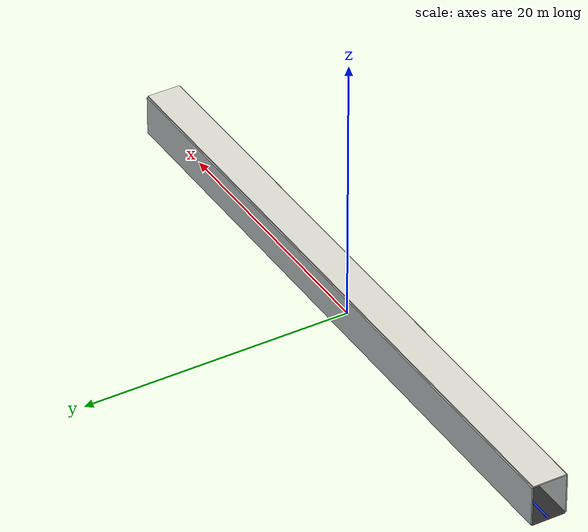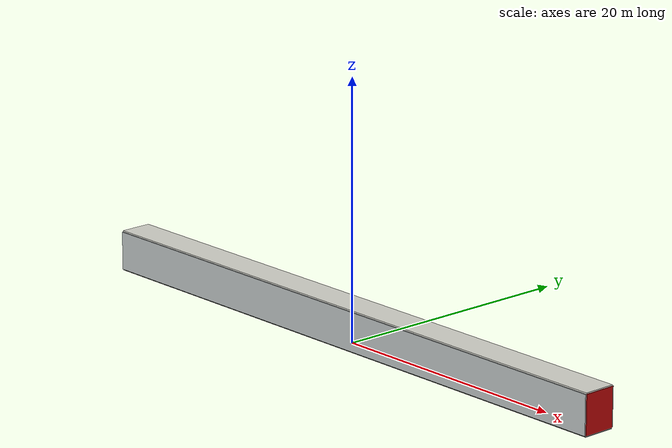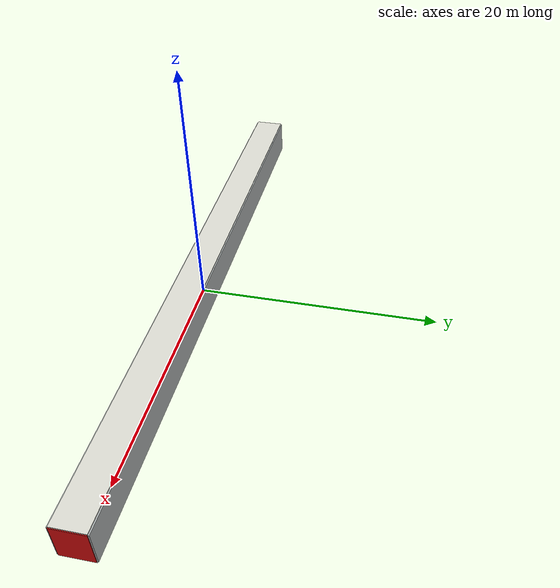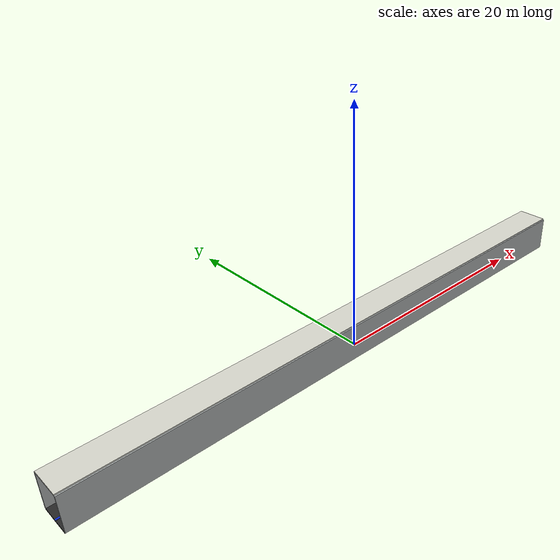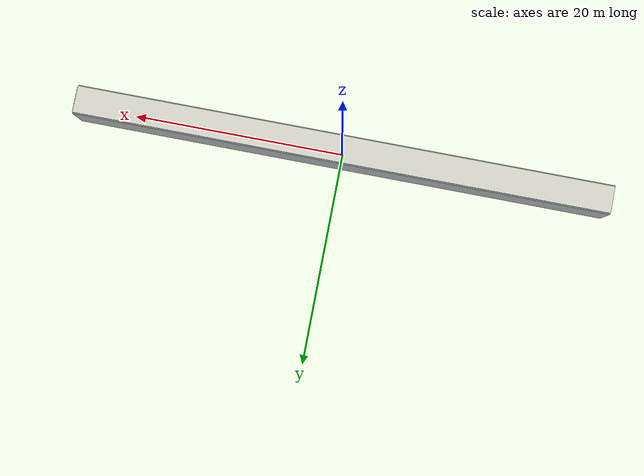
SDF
<?xml version="1.0" ?>
<sdf version="1.7">
  <world name="confined_space">
    <physics name="default_physics" type="ode">
      <max_step_size>0.001</max_step_size>
      <real_time_factor>1.0</real_time_factor>
    </physics>

    <scene>
      <ambient>0.45 0.45 0.45 1</ambient>
      <background>0.70 0.82 0.95 1</background>
      <shadows>false</shadows>
    </scene>

    <light name="sun" type="directional">
      <pose>0 0 30 0 0 0</pose>
      <diffuse>0.9 0.9 0.85 1</diffuse>
      <specular>0.2 0.2 0.2 1</specular>
      <direction>-0.4 0.2 -0.9</direction>
    </light>

    <model name="dark_floor">
      <static>true</static>
      <pose>0 0 -0.05 0 0 0.0</pose>
      <link name="link">
        <collision name="collision">
          <geometry>
            <box>
              <size>50 2.5 0.1</size>
            </box>
          </geometry>
        </collision>
        <visual name="visual">
          <geometry>
            <box>
              <size>50 2.5 0.1</size>
            </box>
          </geometry>
          <material>
            <ambient>0.16 0.16 0.16 1</ambient>
            <diffuse>0.16 0.16 0.16 1</diffuse>
            <specular>0.1 0.1 0.1 1</specular>
          </material>
        </visual>
      </link>
    </model>

    <model name="off_white_ceiling">
      <static>true</static>
      <pose>0 0 3.05 0 0 0.0</pose>
      <link name="link">
        <collision name="collision">
          <geometry>
            <box>
              <size>50 2.5 0.1</size>
            </box>
          </geometry>
        </collision>
        <visual name="visual">
          <geometry>
            <box>
              <size>50 2.5 0.1</size>
            </box>
          </geometry>
          <material>
            <ambient>0.86 0.86 0.82 1</ambient>
            <diffuse>0.86 0.86 0.82 1</diffuse>
            <specular>0.1 0.1 0.1 1</specular>
          </material>
        </visual>
      </link>
    </model>

    <model name="left_concrete_wall">
      <static>true</static>
      <pose>0 1.3 1.5 0 0 0.0</pose>
      <link name="link">
        <collision name="collision">
          <geometry>
            <box>
              <size>50 0.1 3.0</size>
            </box>
          </geometry>
        </collision>
        <visual name="visual">
          <geometry>
            <box>
              <size>50 0.1 3.0</size>
            </box>
          </geometry>
          <material>
            <ambient>0.70 0.72 0.72 1</ambient>
            <diffuse>0.70 0.72 0.72 1</diffuse>
            <specular>0.1 0.1 0.1 1</specular>
          </material>
        </visual>
      </link>
    </model>

    <model name="right_concrete_wall">
      <static>true</static>
      <pose>0 -1.3 1.5 0 0 0.0</pose>
      <link name="link">
        <collision name="collision">
          <geometry>
            <box>
              <size>50 0.1 3.0</size>
            </box>
          </geometry>
        </collision>
        <visual name="visual">
          <geometry>
            <box>
              <size>50 0.1 3.0</size>
            </box>
          </geometry>
          <material>
            <ambient>0.70 0.72 0.72 1</ambient>
            <diffuse>0.70 0.72 0.72 1</diffuse>
            <specular>0.1 0.1 0.1 1</specular>
          </material>
        </visual>
      </link>
    </model>

    <model name="red_warning_end_wall">
      <static>true</static>
      <pose>25.0 0 1.5 0 0 0.0</pose>
      <link name="link">
        <collision name="collision">
          <geometry>
            <box>
              <size>0.1 2.5 3.0</size>
            </box>
          </geometry>
        </collision>
        <visual name="visual">
          <geometry>
            <box>
              <size>0.1 2.5 3.0</size>
            </box>
          </geometry>
          <material>
            <ambient>0.85 0.05 0.05 1</ambient>
            <diffuse>0.85 0.05 0.05 1</diffuse>
            <specular>0.1 0.1 0.1 1</specular>
          </material>
        </visual>
      </link>
    </model>

    <model name="blue_navigation_guide_strip">
      <static>true</static>
      <pose>0 0 0.015 0 0 0.0</pose>
      <link name="link">
        <collision name="collision">
          <geometry>
            <box>
              <size>50 0.15 0.025</size>
            </box>
          </geometry>
        </collision>
        <visual name="visual">
          <geometry>
            <box>
              <size>50 0.15 0.025</size>
            </box>
          </geometry>
          <material>
            <ambient>0.05 0.18 0.85 1</ambient>
            <diffuse>0.05 0.18 0.85 1</diffuse>
            <specular>0.1 0.1 0.1 1</specular>
          </material>
        </visual>
      </link>
    </model>

    <model name="orange_occlusion_block_00">
      <static>true</static>
      <pose>-18 0.62 0.75 0 0 0.0</pose>
      <link name="link">
        <collision name="collision">
          <geometry>
            <box>
              <size>0.7 0.45 1.5</size>
            </box>
          </geometry>
        </collision>
        <visual name="visual">
          <geometry>
            <box>
              <size>0.7 0.45 1.5</size>
            </box>
          </geometry>
          <material>
            <ambient>0.95 0.38 0.05 1</ambient>
            <diffuse>0.95 0.38 0.05 1</diffuse>
            <specular>0.1 0.1 0.1 1</specular>
          </material>
        </visual>
      </link>
    </model>

    <model name="orange_occlusion_block_01">
      <static>true</static>
      <pose>-10 -0.62 0.75 0 0 0.0</pose>
      <link name="link">
        <collision name="collision">
          <geometry>
            <box>
              <size>0.7 0.45 1.5</size>
            </box>
          </geometry>
        </collision>
        <visual name="visual">
          <geometry>
            <box>
              <size>0.7 0.45 1.5</size>
            </box>
          </geometry>
          <material>
            <ambient>0.95 0.38 0.05 1</ambient>
            <diffuse>0.95 0.38 0.05 1</diffuse>
            <specular>0.1 0.1 0.1 1</specular>
          </material>
        </visual>
      </link>
    </model>

    <model name="orange_occlusion_block_02">
      <static>true</static>
      <pose>-2 0.62 0.75 0 0 0.0</pose>
      <link name="link">
        <collision name="collision">
          <geometry>
            <box>
              <size>0.7 0.45 1.5</size>
            </box>
          </geometry>
        </collision>
        <visual name="visual">
          <geometry>
            <box>
              <size>0.7 0.45 1.5</size>
            </box>
          </geometry>
          <material>
            <ambient>0.95 0.38 0.05 1</ambient>
            <diffuse>0.95 0.38 0.05 1</diffuse>
            <specular>0.1 0.1 0.1 1</specular>
          </material>
        </visual>
      </link>
    </model>

    <model name="orange_occlusion_block_03">
      <static>true</static>
      <pose>8 -0.62 0.75 0 0 0.0</pose>
      <link name="link">
        <collision name="collision">
          <geometry>
            <box>
              <size>0.7 0.45 1.5</size>
            </box>
          </geometry>
        </collision>
        <visual name="visual">
          <geometry>
            <box>
              <size>0.7 0.45 1.5</size>
            </box>
          </geometry>
          <material>
            <ambient>0.95 0.38 0.05 1</ambient>
            <diffuse>0.95 0.38 0.05 1</diffuse>
            <specular>0.1 0.1 0.1 1</specular>
          </material>
        </visual>
      </link>
    </model>

    <model name="orange_occlusion_block_04">
      <static>true</static>
      <pose>16 0.62 0.75 0 0 0.0</pose>
      <link name="link">
        <collision name="collision">
          <geometry>
            <box>
              <size>0.7 0.45 1.5</size>
            </box>
          </geometry>
        </collision>
        <visual name="visual">
          <geometry>
            <box>
              <size>0.7 0.45 1.5</size>
            </box>
          </geometry>
          <material>
            <ambient>0.95 0.38 0.05 1</ambient>
            <diffuse>0.95 0.38 0.05 1</diffuse>
            <specular>0.1 0.1 0.1 1</specular>
          </material>
        </visual>
      </link>
    </model>

    <model name="left_yellow_wall_marker_00">
      <static>true</static>
      <pose>-22 1.245 1.4 0 0 0.0</pose>
      <link name="link">
        <collision name="collision">
          <geometry>
            <box>
              <size>1.2 0.035 0.4</size>
            </box>
          </geometry>
        </collision>
        <visual name="visual">
          <geometry>
            <box>
              <size>1.2 0.035 0.4</size>
            </box>
          </geometry>
          <material>
            <ambient>1.0 0.85 0.05 1</ambient>
            <diffuse>1.0 0.85 0.05 1</diffuse>
            <specular>0.1 0.1 0.1 1</specular>
          </material>
        </visual>
      </link>
    </model>

    <model name="right_yellow_wall_marker_00">
      <static>true</static>
      <pose>-22 -1.245 1.4 0 0 0.0</pose>
      <link name="link">
        <collision name="collision">
          <geometry>
            <box>
              <size>1.2 0.035 0.4</size>
            </box>
          </geometry>
        </collision>
        <visual name="visual">
          <geometry>
            <box>
              <size>1.2 0.035 0.4</size>
            </box>
          </geometry>
          <material>
            <ambient>1.0 0.85 0.05 1</ambient>
            <diffuse>1.0 0.85 0.05 1</diffuse>
            <specular>0.1 0.1 0.1 1</specular>
          </material>
        </visual>
      </link>
    </model>

    <model name="left_yellow_wall_marker_01">
      <static>true</static>
      <pose>-16 1.245 1.4 0 0 0.0</pose>
      <link name="link">
        <collision name="collision">
          <geometry>
            <box>
              <size>1.2 0.035 0.4</size>
            </box>
          </geometry>
        </collision>
        <visual name="visual">
          <geometry>
            <box>
              <size>1.2 0.035 0.4</size>
            </box>
          </geometry>
          <material>
            <ambient>1.0 0.85 0.05 1</ambient>
            <diffuse>1.0 0.85 0.05 1</diffuse>
            <specular>0.1 0.1 0.1 1</specular>
          </material>
        </visual>
      </link>
    </model>

    <model name="right_yellow_wall_marker_01">
      <static>true</static>
      <pose>-16 -1.245 1.4 0 0 0.0</pose>
      <link name="link">
        <collision name="collision">
          <geometry>
            <box>
              <size>1.2 0.035 0.4</size>
            </box>
          </geometry>
        </collision>
        <visual name="visual">
          <geometry>
            <box>
              <size>1.2 0.035 0.4</size>
            </box>
          </geometry>
          <material>
            <ambient>1.0 0.85 0.05 1</ambient>
            <diffuse>1.0 0.85 0.05 1</diffuse>
            <specular>0.1 0.1 0.1 1</specular>
          </material>
        </visual>
      </link>
    </model>

    <model name="left_yellow_wall_marker_02">
      <static>true</static>
      <pose>-10 1.245 1.4 0 0 0.0</pose>
      <link name="link">
        <collision name="collision">
          <geometry>
            <box>
              <size>1.2 0.035 0.4</size>
            </box>
          </geometry>
        </collision>
        <visual name="visual">
          <geometry>
            <box>
              <size>1.2 0.035 0.4</size>
            </box>
          </geometry>
          <material>
            <ambient>1.0 0.85 0.05 1</ambient>
            <diffuse>1.0 0.85 0.05 1</diffuse>
            <specular>0.1 0.1 0.1 1</specular>
          </material>
        </visual>
      </link>
    </model>

    <model name="right_yellow_wall_marker_02">
      <static>true</static>
      <pose>-10 -1.245 1.4 0 0 0.0</pose>
      <link name="link">
        <collision name="collision">
          <geometry>
            <box>
              <size>1.2 0.035 0.4</size>
            </box>
          </geometry>
        </collision>
        <visual name="visual">
          <geometry>
            <box>
              <size>1.2 0.035 0.4</size>
            </box>
          </geometry>
          <material>
            <ambient>1.0 0.85 0.05 1</ambient>
            <diffuse>1.0 0.85 0.05 1</diffuse>
            <specular>0.1 0.1 0.1 1</specular>
          </material>
        </visual>
      </link>
    </model>

    <model name="left_yellow_wall_marker_03">
      <static>true</static>
      <pose>-4 1.245 1.4 0 0 0.0</pose>
      <link name="link">
        <collision name="collision">
          <geometry>
            <box>
              <size>1.2 0.035 0.4</size>
            </box>
          </geometry>
        </collision>
        <visual name="visual">
          <geometry>
            <box>
              <size>1.2 0.035 0.4</size>
            </box>
          </geometry>
          <material>
            <ambient>1.0 0.85 0.05 1</ambient>
            <diffuse>1.0 0.85 0.05 1</diffuse>
            <specular>0.1 0.1 0.1 1</specular>
          </material>
        </visual>
      </link>
    </model>

    <model name="right_yellow_wall_marker_03">
      <static>true</static>
      <pose>-4 -1.245 1.4 0 0 0.0</pose>
      <link name="link">
        <collision name="collision">
          <geometry>
            <box>
              <size>1.2 0.035 0.4</size>
            </box>
          </geometry>
        </collision>
        <visual name="visual">
          <geometry>
            <box>
              <size>1.2 0.035 0.4</size>
            </box>
          </geometry>
          <material>
            <ambient>1.0 0.85 0.05 1</ambient>
            <diffuse>1.0 0.85 0.05 1</diffuse>
            <specular>0.1 0.1 0.1 1</specular>
          </material>
        </visual>
      </link>
    </model>

    <model name="left_yellow_wall_marker_04">
      <static>true</static>
      <pose>2 1.245 1.4 0 0 0.0</pose>
      <link name="link">
        <collision name="collision">
          <geometry>
            <box>
              <size>1.2 0.035 0.4</size>
            </box>
          </geometry>
        </collision>
        <visual name="visual">
          <geometry>
            <box>
              <size>1.2 0.035 0.4</size>
            </box>
          </geometry>
          <material>
            <ambient>1.0 0.85 0.05 1</ambient>
            <diffuse>1.0 0.85 0.05 1</diffuse>
            <specular>0.1 0.1 0.1 1</specular>
          </material>
        </visual>
      </link>
    </model>

    <model name="right_yellow_wall_marker_04">
      <static>true</static>
      <pose>2 -1.245 1.4 0 0 0.0</pose>
      <link name="link">
        <collision name="collision">
          <geometry>
            <box>
              <size>1.2 0.035 0.4</size>
            </box>
          </geometry>
        </collision>
        <visual name="visual">
          <geometry>
            <box>
              <size>1.2 0.035 0.4</size>
            </box>
          </geometry>
          <material>
            <ambient>1.0 0.85 0.05 1</ambient>
            <diffuse>1.0 0.85 0.05 1</diffuse>
            <specular>0.1 0.1 0.1 1</specular>
          </material>
        </visual>
      </link>
    </model>

    <model name="left_yellow_wall_marker_05">
      <static>true</static>
      <pose>8 1.245 1.4 0 0 0.0</pose>
      <link name="link">
        <collision name="collision">
          <geometry>
            <box>
              <size>1.2 0.035 0.4</size>
            </box>
          </geometry>
        </collision>
        <visual name="visual">
          <geometry>
            <box>
              <size>1.2 0.035 0.4</size>
            </box>
          </geometry>
          <material>
            <ambient>1.0 0.85 0.05 1</ambient>
            <diffuse>1.0 0.85 0.05 1</diffuse>
            <specular>0.1 0.1 0.1 1</specular>
          </material>
        </visual>
      </link>
    </model>

    <model name="right_yellow_wall_marker_05">
      <static>true</static>
      <pose>8 -1.245 1.4 0 0 0.0</pose>
      <link name="link">
        <collision name="collision">
          <geometry>
            <box>
              <size>1.2 0.035 0.4</size>
            </box>
          </geometry>
        </collision>
        <visual name="visual">
          <geometry>
            <box>
              <size>1.2 0.035 0.4</size>
            </box>
          </geometry>
          <material>
            <ambient>1.0 0.85 0.05 1</ambient>
            <diffuse>1.0 0.85 0.05 1</diffuse>
            <specular>0.1 0.1 0.1 1</specular>
          </material>
        </visual>
      </link>
    </model>

    <model name="left_yellow_wall_marker_06">
      <static>true</static>
      <pose>14 1.245 1.4 0 0 0.0</pose>
      <link name="link">
        <collision name="collision">
          <geometry>
            <box>
              <size>1.2 0.035 0.4</size>
            </box>
          </geometry>
        </collision>
        <visual name="visual">
          <geometry>
            <box>
              <size>1.2 0.035 0.4</size>
            </box>
          </geometry>
          <material>
            <ambient>1.0 0.85 0.05 1</ambient>
            <diffuse>1.0 0.85 0.05 1</diffuse>
            <specular>0.1 0.1 0.1 1</specular>
          </material>
        </visual>
      </link>
    </model>

    <model name="right_yellow_wall_marker_06">
      <static>true</static>
      <pose>14 -1.245 1.4 0 0 0.0</pose>
      <link name="link">
        <collision name="collision">
          <geometry>
            <box>
              <size>1.2 0.035 0.4</size>
            </box>
          </geometry>
        </collision>
        <visual name="visual">
          <geometry>
            <box>
              <size>1.2 0.035 0.4</size>
            </box>
          </geometry>
          <material>
            <ambient>1.0 0.85 0.05 1</ambient>
            <diffuse>1.0 0.85 0.05 1</diffuse>
            <specular>0.1 0.1 0.1 1</specular>
          </material>
        </visual>
      </link>
    </model>

    <model name="left_yellow_wall_marker_07">
      <static>true</static>
      <pose>20 1.245 1.4 0 0 0.0</pose>
      <link name="link">
        <collision name="collision">
          <geometry>
            <box>
              <size>1.2 0.035 0.4</size>
            </box>
          </geometry>
        </collision>
        <visual name="visual">
          <geometry>
            <box>
              <size>1.2 0.035 0.4</size>
            </box>
          </geometry>
          <material>
            <ambient>1.0 0.85 0.05 1</ambient>
            <diffuse>1.0 0.85 0.05 1</diffuse>
            <specular>0.1 0.1 0.1 1</specular>
          </material>
        </visual>
      </link>
    </model>

    <model name="right_yellow_wall_marker_07">
      <static>true</static>
      <pose>20 -1.245 1.4 0 0 0.0</pose>
      <link name="link">
        <collision name="collision">
          <geometry>
            <box>
              <size>1.2 0.035 0.4</size>
            </box>
          </geometry>
        </collision>
        <visual name="visual">
          <geometry>
            <box>
              <size>1.2 0.035 0.4</size>
            </box>
          </geometry>
          <material>
            <ambient>1.0 0.85 0.05 1</ambient>
            <diffuse>1.0 0.85 0.05 1</diffuse>
            <specular>0.1 0.1 0.1 1</specular>
          </material>
        </visual>
      </link>
    </model>

    <model name="ceiling_light_00">
      <static>true</static>
      <pose>-20 0 2.85 0 0 0</pose>
      <link name="link">
        <visual name="visual">
          <geometry>
            <sphere>
              <radius>0.16</radius>
            </sphere>
          </geometry>
          <material>
            <ambient>1.0 0.85 0.25 1</ambient>
            <diffuse>1.0 0.85 0.25 1</diffuse>
            <specular>0.1 0.1 0.1 1</specular>
          </material>
        </visual>
      </link>
    </model>

    <model name="ceiling_light_01">
      <static>true</static>
      <pose>-12 0 2.85 0 0 0</pose>
      <link name="link">
        <visual name="visual">
          <geometry>
            <sphere>
              <radius>0.16</radius>
            </sphere>
          </geometry>
          <material>
            <ambient>1.0 0.85 0.25 1</ambient>
            <diffuse>1.0 0.85 0.25 1</diffuse>
            <specular>0.1 0.1 0.1 1</specular>
          </material>
        </visual>
      </link>
    </model>

    <model name="ceiling_light_02">
      <static>true</static>
      <pose>-4 0 2.85 0 0 0</pose>
      <link name="link">
        <visual name="visual">
          <geometry>
            <sphere>
              <radius>0.16</radius>
            </sphere>
          </geometry>
          <material>
            <ambient>1.0 0.85 0.25 1</ambient>
            <diffuse>1.0 0.85 0.25 1</diffuse>
            <specular>0.1 0.1 0.1 1</specular>
          </material>
        </visual>
      </link>
    </model>

    <model name="ceiling_light_03">
      <static>true</static>
      <pose>4 0 2.85 0 0 0</pose>
      <link name="link">
        <visual name="visual">
          <geometry>
            <sphere>
              <radius>0.16</radius>
            </sphere>
          </geometry>
          <material>
            <ambient>1.0 0.85 0.25 1</ambient>
            <diffuse>1.0 0.85 0.25 1</diffuse>
            <specular>0.1 0.1 0.1 1</specular>
          </material>
        </visual>
      </link>
    </model>

    <model name="ceiling_light_04">
      <static>true</static>
      <pose>12 0 2.85 0 0 0</pose>
      <link name="link">
        <visual name="visual">
          <geometry>
            <sphere>
              <radius>0.16</radius>
            </sphere>
          </geometry>
          <material>
            <ambient>1.0 0.85 0.25 1</ambient>
            <diffuse>1.0 0.85 0.25 1</diffuse>
            <specular>0.1 0.1 0.1 1</specular>
          </material>
        </visual>
      </link>
    </model>

    <model name="ceiling_light_05">
      <static>true</static>
      <pose>20 0 2.85 0 0 0</pose>
      <link name="link">
        <visual name="visual">
          <geometry>
            <sphere>
              <radius>0.16</radius>
            </sphere>
          </geometry>
          <material>
            <ambient>1.0 0.85 0.25 1</ambient>
            <diffuse>1.0 0.85 0.25 1</diffuse>
            <specular>0.1 0.1 0.1 1</specular>
          </material>
        </visual>
      </link>
    </model>

  </world>
</sdf>
